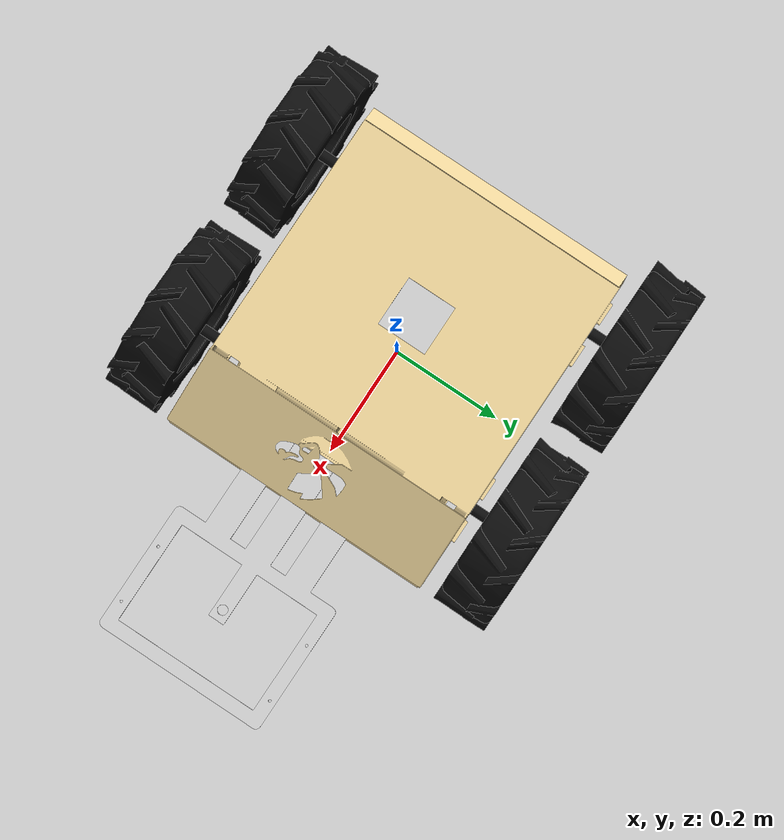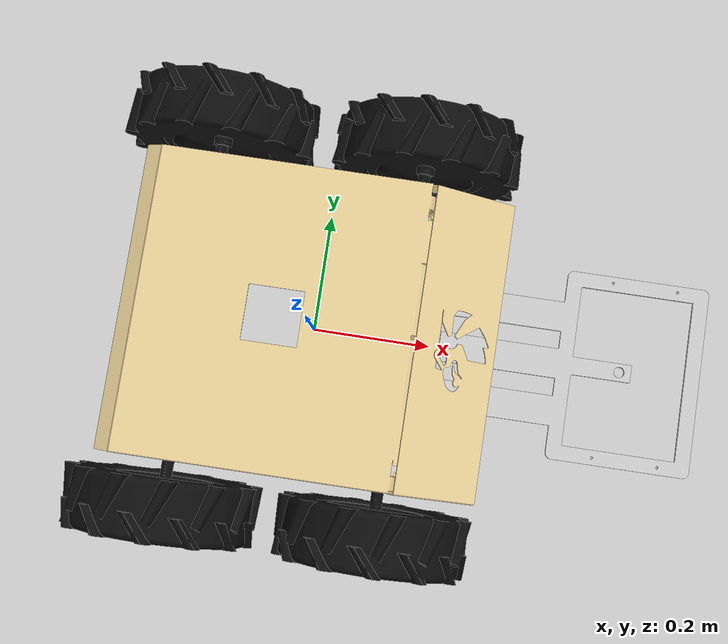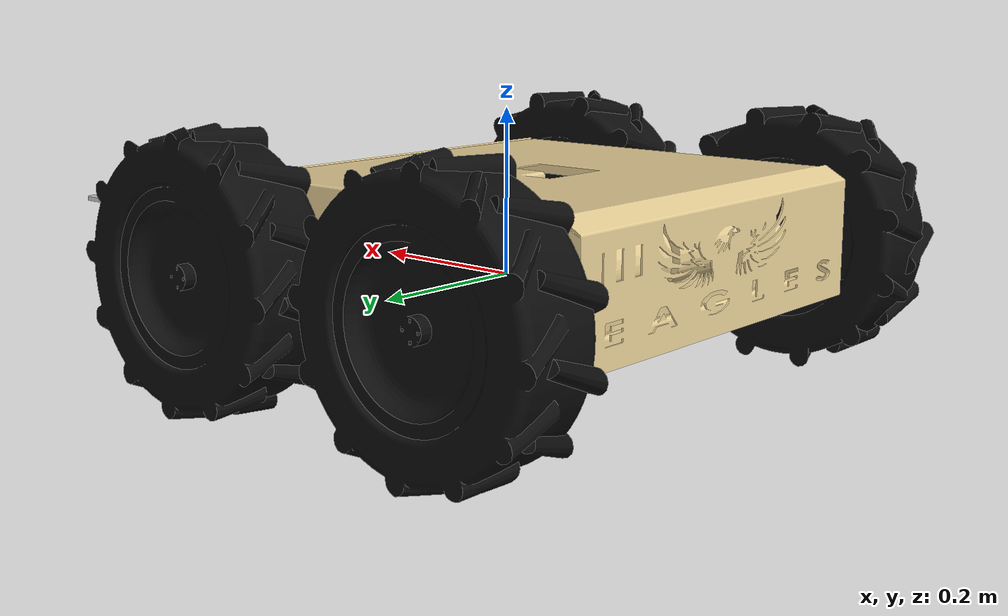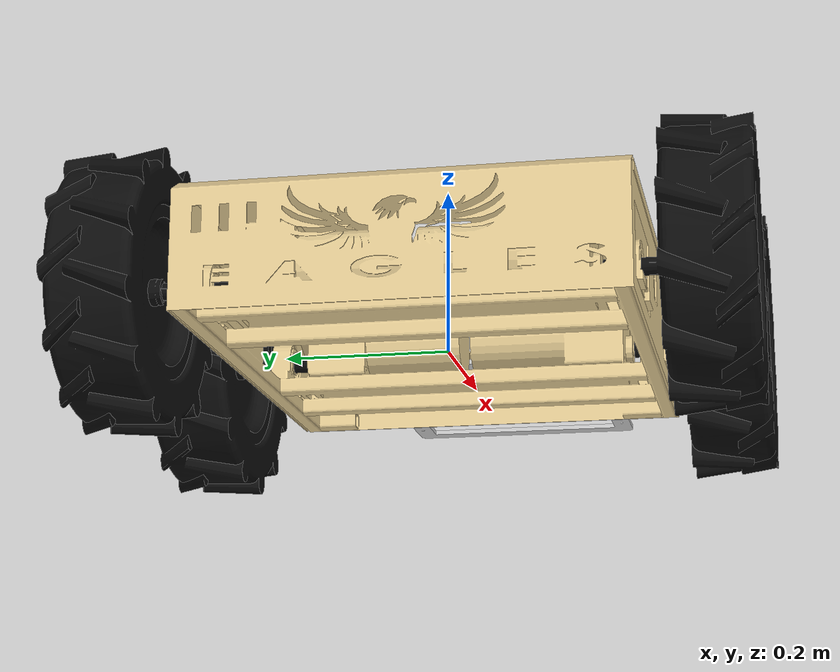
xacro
<?xml version="1.0"?>
<robot name="minesweeper" xmlns:xacro="http://www.ros.org/wiki/xacro">
    <xacro:arg name="robot_namespace" default="/" />
    <xacro:include filename="$(find minesweeper_description)/urdf/wheel.urdf.xacro"/>
    <link name="base_link">
      <inertial>
        <origin xyz="0.0 0.0 -0.07796" rpy="0.0 0.0 0.0"/>
        <mass value="20.25"/>
        <inertia ixx="0.6022" ixy="-0.02364" ixz="-0.1197" iyy="1.7386" iyz="-0.001544" izz="2.0296" />
      </inertial>
      <visual>
        <geometry>
          <mesh filename="package://minesweeper_description/meshes/base_link.STL" />
        </geometry>
        <material name="beige">
          <color rgba="0.91 0.815 0.592 1" />
        </material>
      </visual>
      <collision>
        <geometry>
          <box size=".77689 0.422 0.15592"/>
        </geometry>
        <origin xyz="0.0 0.0 0.07796"/>
      </collision>
    </link>
    <gazebo reference="base_link">
      <visual name="base_link_visual">
          <material>
              <diffuse>0.91 0.815 0.592 1.0</diffuse>
              <specular>0.91 0.815 0.592 1.0</specular>
              <ambient>0.91 0.815 0.592 1.0</ambient>
          </material>
      </visual>
    </gazebo>
    <link name="imu_link"/>
    <joint name="imu_joint" type="fixed">
      <origin xyz="-0.05 0.0 0.03118" rpy="0.0 0.0 0.0"/>
      <parent link="base_link"/>
      <child link="imu_link"/>
    </joint>
    <gazebo reference="imu_link">
    </gazebo>
    <link name="base_footprint"/>
    <joint name="base_footprint_joint" type="fixed">
      <origin xyz="0 0 0" rpy="0 0 0" />
      <parent link="base_link" />
      <child link="base_footprint" />
    </joint>
    <link name="coil_link">
        <visual>
            <geometry>
                <mesh filename="package://minesweeper_description/meshes/coil_link.STL"/>
            </geometry>
            <material name="gray">
              <color rgba="0.8 0.8 0.8 1" />
            </material>
        </visual>
    </link>
    <joint name="coil" type="fixed">
        <parent link="base_link"/>
        <child link="coil_link"/>
        <origin xyz="0.2165 0.0 0.04" rpy="0.0 0.0 -1.57079"/>
    </joint>

    <link name="coil_center_link">
    </link>
    <joint name="coil_center" type="fixed">
        <parent link="coil_link"/>
        <child link="coil_center_link"/>
        <origin xyz="0.0 0.307 -0.1"/> <!--it was 0.190 in the x-->
    </joint>
    <xacro:wheel prefix="front_left" angle="0.0">
      <origin xyz="0.15 0.2105 0.03118"/>
    </xacro:wheel>
    <xacro:wheel prefix="front_right" angle="180.0">
      <origin xyz="0.15 -0.2105 0.03118"/>
    </xacro:wheel>
    <xacro:wheel prefix="rear_left" angle="0.0">
      <origin xyz="-0.205 0.2105 0.03118"/>
    </xacro:wheel>
    <xacro:wheel prefix="rear_right" angle="180.0">
      <origin xyz="-0.205 -0.2105 0.03118"/>
    </xacro:wheel>
    <gazebo>
      <plugin name="gazebo_ros_control" filename="libgazebo_ros_control.so">
        <robotNamespace>$(arg robot_namespace)</robotNamespace>
      </plugin>
    </gazebo>
    <gazebo>
      <plugin name="imu_controller" filename="libhector_gazebo_ros_imu.so">
        <robotNamespace>$(arg robot_namespace)</robotNamespace>
        <updateRate>50.0</updateRate>
        <bodyName>imu_link</bodyName>
        <topicName>imu/data</topicName>
        <accelDrift>0.005 0.005 0.005</accelDrift>
        <accelGaussianNoise>0.005 0.005 0.005</accelGaussianNoise>
        <rateDrift>0.005 0.005 0.005</rateDrift>
        <rateGaussianNoise>0.005 0.005 0.005</rateGaussianNoise>
        <headingDrift>0.005</headingDrift>
        <headingGaussianNoise>0.001</headingGaussianNoise>
      </plugin>
    </gazebo>
</robot>

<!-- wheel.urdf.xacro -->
<robot name="wheel" xmlns:xacro="http://www.ros.org/wiki/xacro">
    <xacro:macro name="wheel" params="prefix angle *joint_origin">
      <link name="${prefix}_wheel_link">
          <visual>
              <geometry>
                  <mesh filename="package://minesweeper_description/meshes/wheel.STL"/>
              </geometry>
              <origin xyz="0.0 0.0 0.0" rpy="0 0 ${radians(angle)}"/>
              <material name="black">
                  <color rgba="0.05 0.05 0.05 1.0"/>
              </material>
          </visual>
          <collision>
              <geometry>
                  <cylinder radius="0.15955" length="0.100"/>
              </geometry>
              <origin xyz="0.0 ${0.125*cos(radians(angle))} 0.0" rpy="0 ${radians(90)} ${radians(90)}"/>
          </collision>
          <inertial>
            <mass value="2.8" />
            <inertia  ixx="0.02467" ixy="0" ixz="0" iyy="0.04411" iyz="0" izz="0.02467" />
          </inertial>
      </link>
      <gazebo reference="${prefix}_wheel_link">
        <visual name="{prefix}_wheel_visual">
            <material>
                <diffuse>0.05 0.05 0.05 1.0</diffuse>
                <specular>0.05 0.05 0.05 1.0</specular>
                <ambient>0.05 0.05 0.05 1.0</ambient>
            </material>
        </visual>
      </gazebo>
      <gazebo reference="${prefix}_wheel_link">
  			<mu1 value="1.0"/>
  			<mu2 value="1.0"/>
  			<kp value="10000000.0" />
  			<kd value="1.0" />
  			<fdir1 value="1 0 0"/>
  		</gazebo>
      <joint name="${prefix}_wheel" type="continuous">
          <parent link="base_link"/>
          <child link="${prefix}_wheel_link"/>
          <axis xyz="0 1 0"/>
          <xacro:insert_block name="joint_origin"/>
      </joint>
      <transmission name="${prefix}_wheel_transmission">
        <type>transmission_interface/SimpleTransmission</type>
        <joint name="${prefix}_wheel">
            <hardwareInterface>VelocityJointInterface</hardwareInterface>
        </joint>
        <actuator name="${prefix}_wheel_actuator">
            <mechanicalReduction>1</mechanicalReduction>
        </actuator>
      </transmission>
    </xacro:macro>
</robot>
